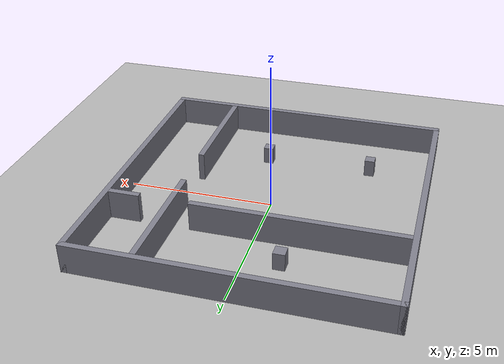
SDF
<?xml version="1.0"?>
<sdf version="1.10">
  <world name="scenario_0">
    <physics name="fast" type="ignored">
      <max_step_size>0.005</max_step_size>
      <real_time_factor>1.0</real_time_factor>
      <real_time_update_rate>200</real_time_update_rate>
    </physics>
    <plugin filename="gz-sim-physics-system" name="gz::sim::systems::Physics"/>
    <plugin filename="gz-sim-user-commands-system" name="gz::sim::systems::UserCommands"/>
    <plugin filename="gz-sim-scene-broadcaster-system" name="gz::sim::systems::SceneBroadcaster"/>
    <plugin filename="gz-sim-sensors-system" name="gz::sim::systems::Sensors">
      <render_engine>ogre2</render_engine>
    </plugin>
    <light type="directional" name="sun">
      <cast_shadows>false</cast_shadows>
      <pose>0 0 10 0 0 0</pose>
      <diffuse>0.9 0.9 0.9 1</diffuse>
      <direction>-0.5 0.2 -0.9</direction>
    </light>
    <model name="ground_plane">
      <static>true</static>
      <link name="link">
        <collision name="c"><geometry><plane><normal>0 0 1</normal><size>20 20</size></plane></geometry></collision>
        <visual name="v"><geometry><plane><normal>0 0 1</normal><size>20 20</size></plane></geometry>
          <material><ambient>0.7 0.7 0.7 1</ambient><diffuse>0.7 0.7 0.7 1</diffuse></material></visual>
      </link>
    </model>
    <model name="box_0">
      <static>true</static>
      <pose>0.0 5.0 0.5 0 0 0</pose>
      <link name="link">
        <collision name="c"><geometry><box><size>10.2 0.2 1.0</size></box></geometry></collision>
        <visual name="v"><geometry><box><size>10.2 0.2 1.0</size></box></geometry>
          <material><ambient>0.5 0.5 0.55 1</ambient><diffuse>0.5 0.5 0.55 1</diffuse></material></visual>
      </link>
    </model>
    <model name="box_1">
      <static>true</static>
      <pose>0.0 -5.0 0.5 0 0 0</pose>
      <link name="link">
        <collision name="c"><geometry><box><size>10.2 0.2 1.0</size></box></geometry></collision>
        <visual name="v"><geometry><box><size>10.2 0.2 1.0</size></box></geometry>
          <material><ambient>0.5 0.5 0.55 1</ambient><diffuse>0.5 0.5 0.55 1</diffuse></material></visual>
      </link>
    </model>
    <model name="box_2">
      <static>true</static>
      <pose>5.0 0.0 0.5 0 0 0</pose>
      <link name="link">
        <collision name="c"><geometry><box><size>0.2 10.2 1.0</size></box></geometry></collision>
        <visual name="v"><geometry><box><size>0.2 10.2 1.0</size></box></geometry>
          <material><ambient>0.5 0.5 0.55 1</ambient><diffuse>0.5 0.5 0.55 1</diffuse></material></visual>
      </link>
    </model>
    <model name="box_3">
      <static>true</static>
      <pose>-5.0 0.0 0.5 0 0 0</pose>
      <link name="link">
        <collision name="c"><geometry><box><size>0.2 10.2 1.0</size></box></geometry></collision>
        <visual name="v"><geometry><box><size>0.2 10.2 1.0</size></box></geometry>
          <material><ambient>0.5 0.5 0.55 1</ambient><diffuse>0.5 0.5 0.55 1</diffuse></material></visual>
      </link>
    </model>
    <model name="box_4">
      <static>true</static>
      <pose>2.79 -2.9176720940333714 0.5 0 0 0</pose>
      <link name="link">
        <collision name="c"><geometry><box><size>0.2 3.964655811933258 1.0</size></box></geometry></collision>
        <visual name="v"><geometry><box><size>0.2 3.964655811933258 1.0</size></box></geometry>
          <material><ambient>0.5 0.5 0.55 1</ambient><diffuse>0.5 0.5 0.55 1</diffuse></material></visual>
      </link>
    </model>
    <model name="box_5">
      <static>true</static>
      <pose>2.79 2.8273279059666288 0.5 0 0 0</pose>
      <link name="link">
        <collision name="c"><geometry><box><size>0.2 4.145344188066743 1.0</size></box></geometry></collision>
        <visual name="v"><geometry><box><size>0.2 4.145344188066743 1.0</size></box></geometry>
          <material><ambient>0.5 0.5 0.55 1</ambient><diffuse>0.5 0.5 0.55 1</diffuse></material></visual>
      </link>
    </model>
    <model name="box_6">
      <static>true</static>
      <pose>-1.37086201630625 1.98 0.5 0 0 0</pose>
      <link name="link">
        <collision name="c"><geometry><box><size>7.058275967387501 0.2 1.0</size></box></geometry></collision>
        <visual name="v"><geometry><box><size>7.058275967387501 0.2 1.0</size></box></geometry>
          <material><ambient>0.5 0.5 0.55 1</ambient><diffuse>0.5 0.5 0.55 1</diffuse></material></visual>
      </link>
    </model>
    <model name="box_7">
      <static>true</static>
      <pose>4.374137983693751 1.98 0.5 0 0 0</pose>
      <link name="link">
        <collision name="c"><geometry><box><size>1.0517240326124995 0.2 1.0</size></box></geometry></collision>
        <visual name="v"><geometry><box><size>1.0517240326124995 0.2 1.0</size></box></geometry>
          <material><ambient>0.5 0.5 0.55 1</ambient><diffuse>0.5 0.5 0.55 1</diffuse></material></visual>
      </link>
    </model>
    <model name="box_8">
      <static>true</static>
      <pose>-1.14 3.13 0.3 0 0 0</pose>
      <link name="link">
        <collision name="c"><geometry><box><size>0.39 0.39 0.6</size></box></geometry></collision>
        <visual name="v"><geometry><box><size>0.39 0.39 0.6</size></box></geometry>
          <material><ambient>0.5 0.5 0.55 1</ambient><diffuse>0.5 0.5 0.55 1</diffuse></material></visual>
      </link>
    </model>
    <model name="box_9">
      <static>true</static>
      <pose>-2.89 -2.88 0.3 0 0 0</pose>
      <link name="link">
        <collision name="c"><geometry><box><size>0.34 0.34 0.6</size></box></geometry></collision>
        <visual name="v"><geometry><box><size>0.34 0.34 0.6</size></box></geometry>
          <material><ambient>0.5 0.5 0.55 1</ambient><diffuse>0.5 0.5 0.55 1</diffuse></material></visual>
      </link>
    </model>
    <model name="box_10">
      <static>true</static>
      <pose>0.82 -2.82 0.3 0 0 0</pose>
      <link name="link">
        <collision name="c"><geometry><box><size>0.34 0.34 0.6</size></box></geometry></collision>
        <visual name="v"><geometry><box><size>0.34 0.34 0.6</size></box></geometry>
          <material><ambient>0.5 0.5 0.55 1</ambient><diffuse>0.5 0.5 0.55 1</diffuse></material></visual>
      </link>
    </model>
  </world>
</sdf>
